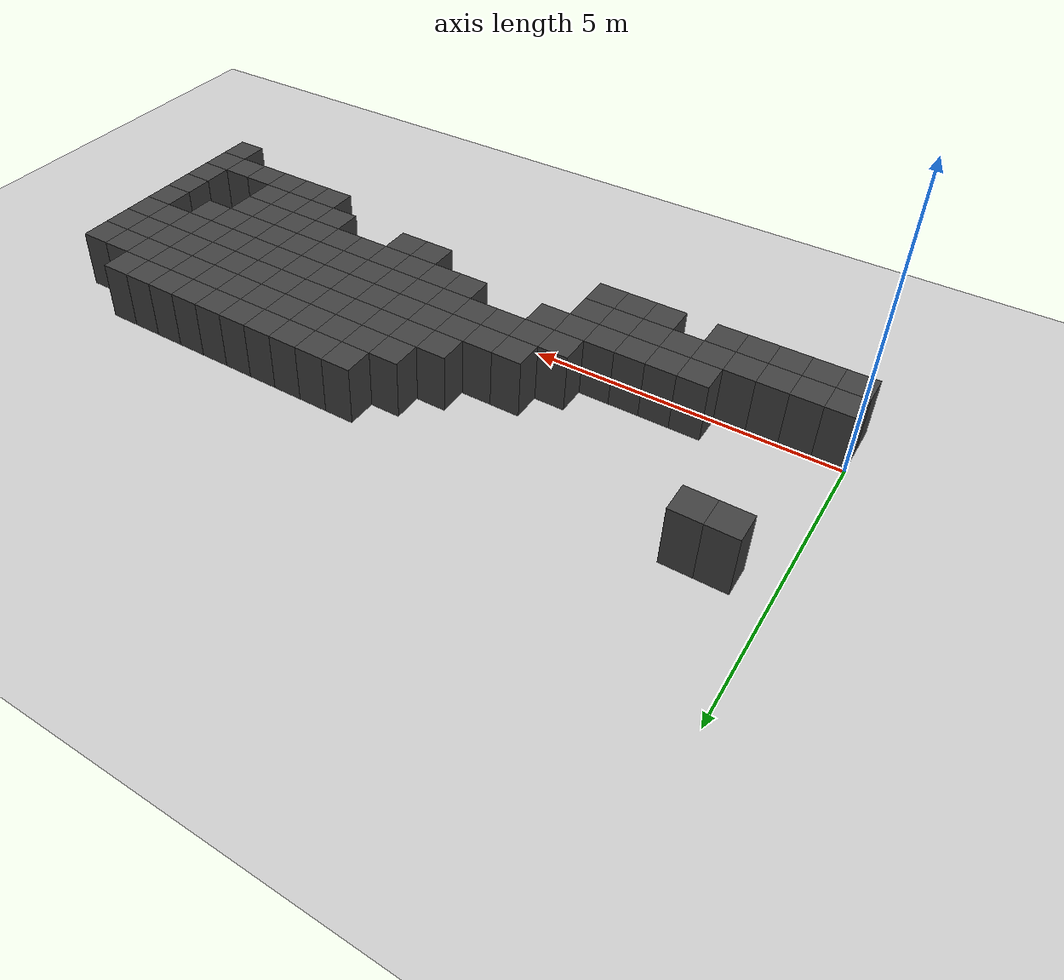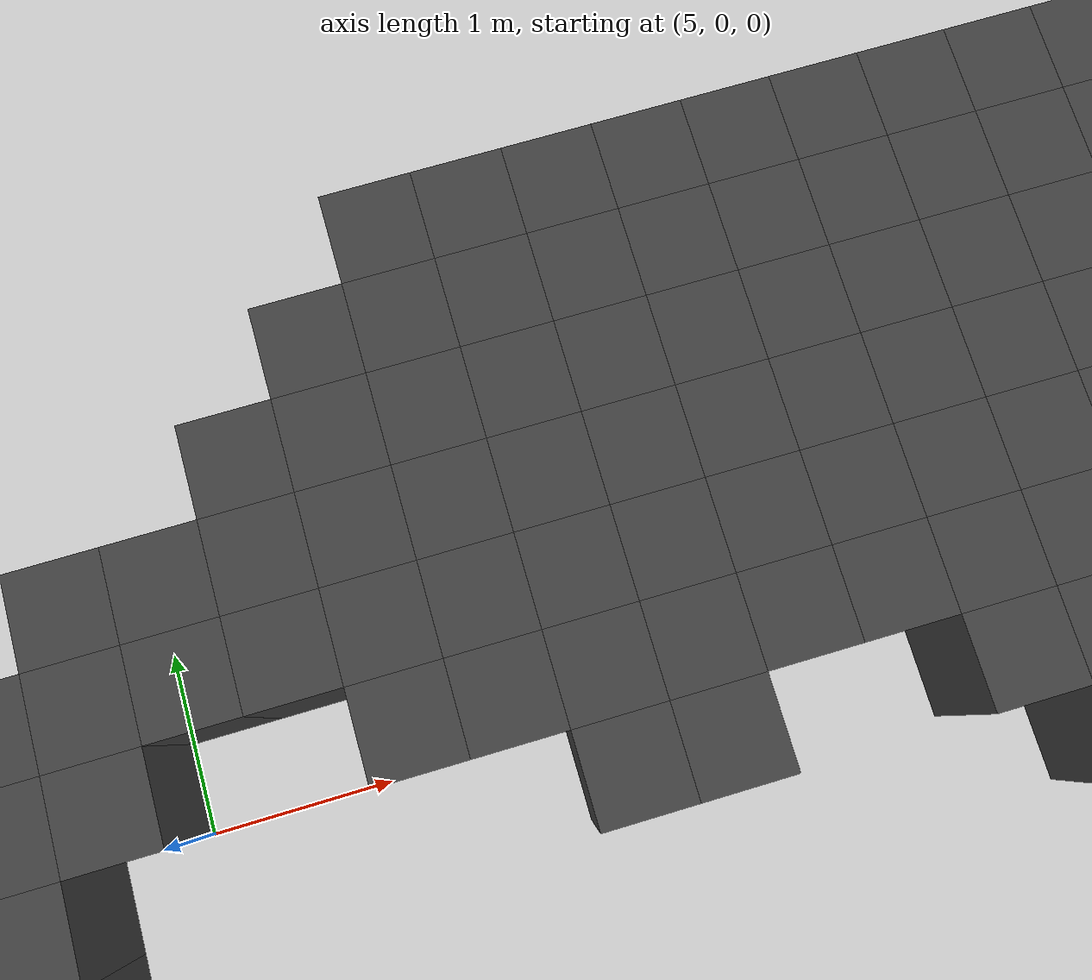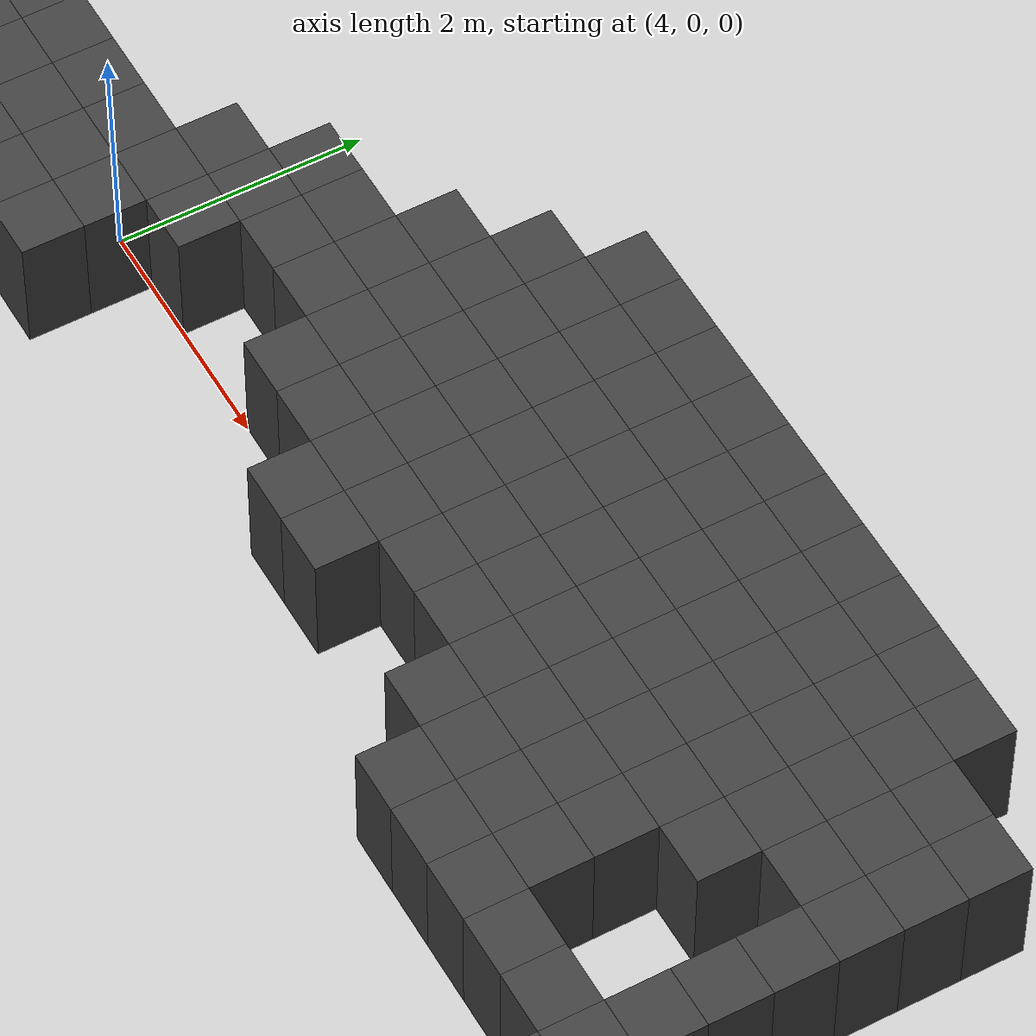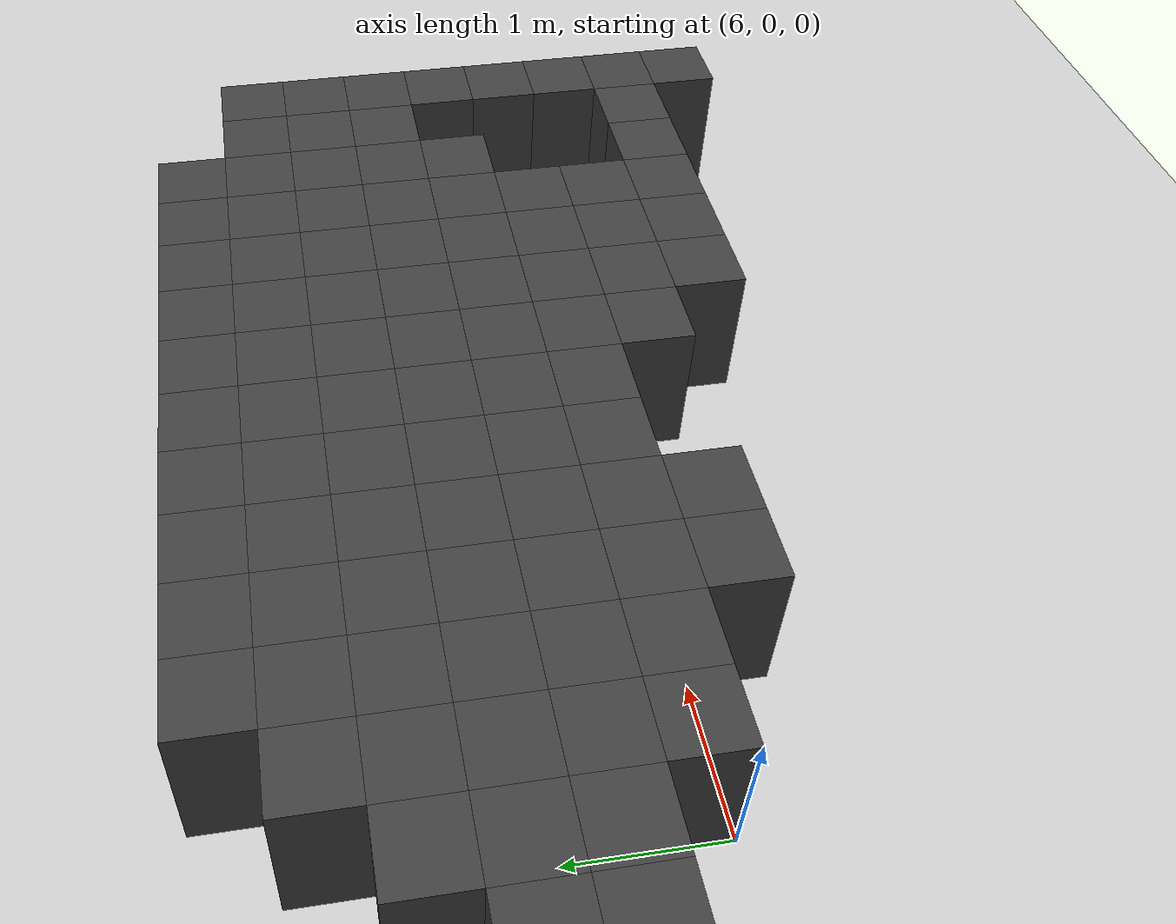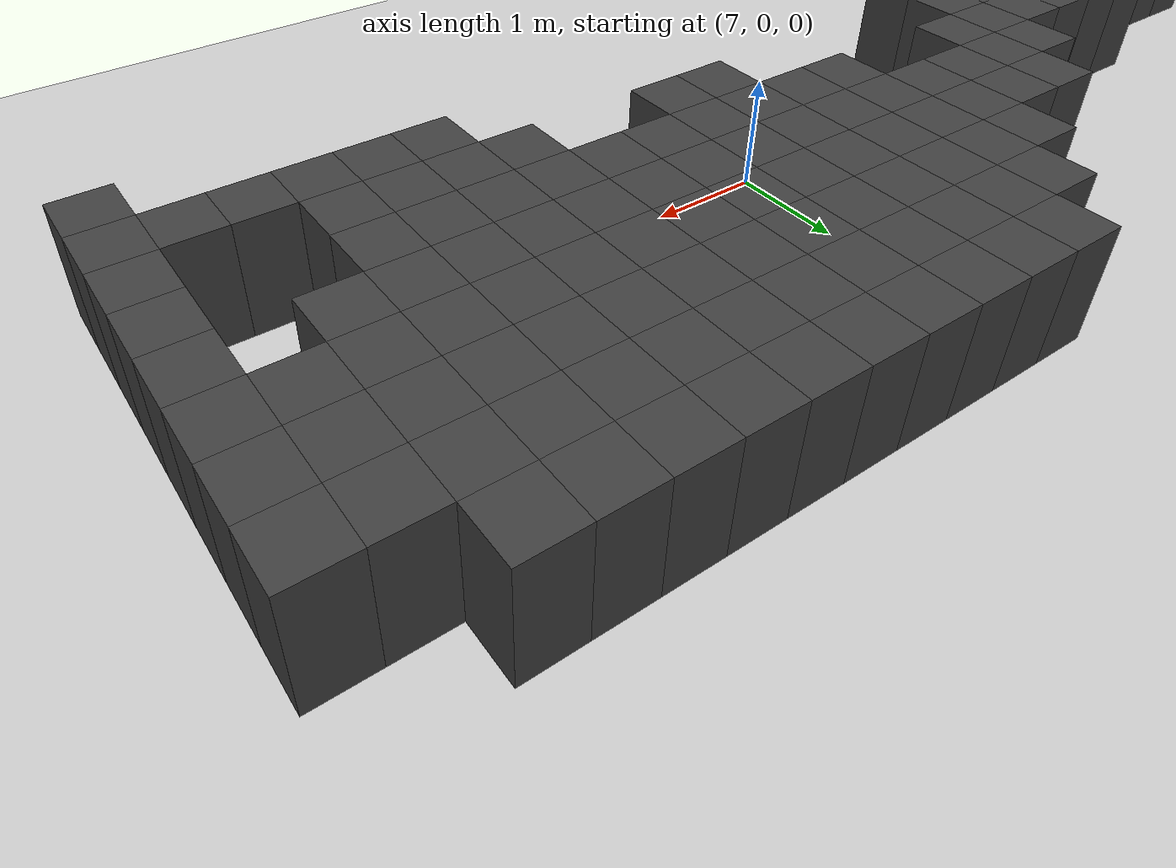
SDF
<sdf version="1.7">
 <world name="map_9826">
  <model name="ground_plane">
   <static>true</static>
   <link name="link">
    <collision name="collision">
     <geometry><plane><normal>0 0 1</normal><size>200 200</size></plane></geometry>
    </collision>
    <visual name="visual">
     <geometry><plane><normal>0 0 1</normal><size>200 200</size></plane></geometry>
     <material><ambient>0.8 0.8 0.8 1</ambient><diffuse>0.8 0.8 0.8 1</diffuse></material>
    </visual>
   </link>
  </model>
  <model name="maze_environment">
   <static>true</static>
   <link name="wall_404">
    <pose>0.750 2.750 0.500 0 0 0</pose>
    <collision name="col"><geometry><box><size>0.5 0.5 1.0</size></box></geometry></collision>
    <visual name="vis">
     <geometry><box><size>0.5 0.5 1.0</size></box></geometry>
     <material><ambient>0.15 0.15 0.15 1</ambient><diffuse>0.25 0.25 0.25 1</diffuse></material>
    </visual>
   </link>
   <link name="wall_405">
    <pose>1.250 2.750 0.500 0 0 0</pose>
    <collision name="col"><geometry><box><size>0.5 0.5 1.0</size></box></geometry></collision>
    <visual name="vis">
     <geometry><box><size>0.5 0.5 1.0</size></box></geometry>
     <material><ambient>0.15 0.15 0.15 1</ambient><diffuse>0.25 0.25 0.25 1</diffuse></material>
    </visual>
   </link>
   <link name="wall_406">
    <pose>6.750 2.750 0.500 0 0 0</pose>
    <collision name="col"><geometry><box><size>0.5 0.5 1.0</size></box></geometry></collision>
    <visual name="vis">
     <geometry><box><size>0.5 0.5 1.0</size></box></geometry>
     <material><ambient>0.15 0.15 0.15 1</ambient><diffuse>0.25 0.25 0.25 1</diffuse></material>
    </visual>
   </link>
   <link name="wall_407">
    <pose>7.250 2.750 0.500 0 0 0</pose>
    <collision name="col"><geometry><box><size>0.5 0.5 1.0</size></box></geometry></collision>
    <visual name="vis">
     <geometry><box><size>0.5 0.5 1.0</size></box></geometry>
     <material><ambient>0.15 0.15 0.15 1</ambient><diffuse>0.25 0.25 0.25 1</diffuse></material>
    </visual>
   </link>
   <link name="wall_408">
    <pose>7.750 2.750 0.500 0 0 0</pose>
    <collision name="col"><geometry><box><size>0.5 0.5 1.0</size></box></geometry></collision>
    <visual name="vis">
     <geometry><box><size>0.5 0.5 1.0</size></box></geometry>
     <material><ambient>0.15 0.15 0.15 1</ambient><diffuse>0.25 0.25 0.25 1</diffuse></material>
    </visual>
   </link>
   <link name="wall_409">
    <pose>8.250 2.750 0.500 0 0 0</pose>
    <collision name="col"><geometry><box><size>0.5 0.5 1.0</size></box></geometry></collision>
    <visual name="vis">
     <geometry><box><size>0.5 0.5 1.0</size></box></geometry>
     <material><ambient>0.15 0.15 0.15 1</ambient><diffuse>0.25 0.25 0.25 1</diffuse></material>
    </visual>
   </link>
   <link name="wall_410">
    <pose>8.750 2.750 0.500 0 0 0</pose>
    <collision name="col"><geometry><box><size>0.5 0.5 1.0</size></box></geometry></collision>
    <visual name="vis">
     <geometry><box><size>0.5 0.5 1.0</size></box></geometry>
     <material><ambient>0.15 0.15 0.15 1</ambient><diffuse>0.25 0.25 0.25 1</diffuse></material>
    </visual>
   </link>
   <link name="wall_411">
    <pose>9.250 2.750 0.500 0 0 0</pose>
    <collision name="col"><geometry><box><size>0.5 0.5 1.0</size></box></geometry></collision>
    <visual name="vis">
     <geometry><box><size>0.5 0.5 1.0</size></box></geometry>
     <material><ambient>0.15 0.15 0.15 1</ambient><diffuse>0.25 0.25 0.25 1</diffuse></material>
    </visual>
   </link>
   <link name="wall_412">
    <pose>9.750 2.750 0.500 0 0 0</pose>
    <collision name="col"><geometry><box><size>0.5 0.5 1.0</size></box></geometry></collision>
    <visual name="vis">
     <geometry><box><size>0.5 0.5 1.0</size></box></geometry>
     <material><ambient>0.15 0.15 0.15 1</ambient><diffuse>0.25 0.25 0.25 1</diffuse></material>
    </visual>
   </link>
   <link name="wall_413">
    <pose>10.250 2.750 0.500 0 0 0</pose>
    <collision name="col"><geometry><box><size>0.5 0.5 1.0</size></box></geometry></collision>
    <visual name="vis">
     <geometry><box><size>0.5 0.5 1.0</size></box></geometry>
     <material><ambient>0.15 0.15 0.15 1</ambient><diffuse>0.25 0.25 0.25 1</diffuse></material>
    </visual>
   </link>
   <link name="wall_414">
    <pose>10.750 2.750 0.500 0 0 0</pose>
    <collision name="col"><geometry><box><size>0.5 0.5 1.0</size></box></geometry></collision>
    <visual name="vis">
     <geometry><box><size>0.5 0.5 1.0</size></box></geometry>
     <material><ambient>0.15 0.15 0.15 1</ambient><diffuse>0.25 0.25 0.25 1</diffuse></material>
    </visual>
   </link>
   <link name="wall_415">
    <pose>11.250 2.750 0.500 0 0 0</pose>
    <collision name="col"><geometry><box><size>0.5 0.5 1.0</size></box></geometry></collision>
    <visual name="vis">
     <geometry><box><size>0.5 0.5 1.0</size></box></geometry>
     <material><ambient>0.15 0.15 0.15 1</ambient><diffuse>0.25 0.25 0.25 1</diffuse></material>
    </visual>
   </link>
   <link name="wall_419">
    <pose>6.250 2.250 0.500 0 0 0</pose>
    <collision name="col"><geometry><box><size>0.5 0.5 1.0</size></box></geometry></collision>
    <visual name="vis">
     <geometry><box><size>0.5 0.5 1.0</size></box></geometry>
     <material><ambient>0.15 0.15 0.15 1</ambient><diffuse>0.25 0.25 0.25 1</diffuse></material>
    </visual>
   </link>
   <link name="wall_420">
    <pose>6.750 2.250 0.500 0 0 0</pose>
    <collision name="col"><geometry><box><size>0.5 0.5 1.0</size></box></geometry></collision>
    <visual name="vis">
     <geometry><box><size>0.5 0.5 1.0</size></box></geometry>
     <material><ambient>0.15 0.15 0.15 1</ambient><diffuse>0.25 0.25 0.25 1</diffuse></material>
    </visual>
   </link>
   <link name="wall_421">
    <pose>7.250 2.250 0.500 0 0 0</pose>
    <collision name="col"><geometry><box><size>0.5 0.5 1.0</size></box></geometry></collision>
    <visual name="vis">
     <geometry><box><size>0.5 0.5 1.0</size></box></geometry>
     <material><ambient>0.15 0.15 0.15 1</ambient><diffuse>0.25 0.25 0.25 1</diffuse></material>
    </visual>
   </link>
   <link name="wall_422">
    <pose>7.750 2.250 0.500 0 0 0</pose>
    <collision name="col"><geometry><box><size>0.5 0.5 1.0</size></box></geometry></collision>
    <visual name="vis">
     <geometry><box><size>0.5 0.5 1.0</size></box></geometry>
     <material><ambient>0.15 0.15 0.15 1</ambient><diffuse>0.25 0.25 0.25 1</diffuse></material>
    </visual>
   </link>
   <link name="wall_423">
    <pose>8.250 2.250 0.500 0 0 0</pose>
    <collision name="col"><geometry><box><size>0.5 0.5 1.0</size></box></geometry></collision>
    <visual name="vis">
     <geometry><box><size>0.5 0.5 1.0</size></box></geometry>
     <material><ambient>0.15 0.15 0.15 1</ambient><diffuse>0.25 0.25 0.25 1</diffuse></material>
    </visual>
   </link>
   <link name="wall_424">
    <pose>8.750 2.250 0.500 0 0 0</pose>
    <collision name="col"><geometry><box><size>0.5 0.5 1.0</size></box></geometry></collision>
    <visual name="vis">
     <geometry><box><size>0.5 0.5 1.0</size></box></geometry>
     <material><ambient>0.15 0.15 0.15 1</ambient><diffuse>0.25 0.25 0.25 1</diffuse></material>
    </visual>
   </link>
   <link name="wall_425">
    <pose>9.250 2.250 0.500 0 0 0</pose>
    <collision name="col"><geometry><box><size>0.5 0.5 1.0</size></box></geometry></collision>
    <visual name="vis">
     <geometry><box><size>0.5 0.5 1.0</size></box></geometry>
     <material><ambient>0.15 0.15 0.15 1</ambient><diffuse>0.25 0.25 0.25 1</diffuse></material>
    </visual>
   </link>
   <link name="wall_426">
    <pose>9.750 2.250 0.500 0 0 0</pose>
    <collision name="col"><geometry><box><size>0.5 0.5 1.0</size></box></geometry></collision>
    <visual name="vis">
     <geometry><box><size>0.5 0.5 1.0</size></box></geometry>
     <material><ambient>0.15 0.15 0.15 1</ambient><diffuse>0.25 0.25 0.25 1</diffuse></material>
    </visual>
   </link>
   <link name="wall_427">
    <pose>10.250 2.250 0.500 0 0 0</pose>
    <collision name="col"><geometry><box><size>0.5 0.5 1.0</size></box></geometry></collision>
    <visual name="vis">
     <geometry><box><size>0.5 0.5 1.0</size></box></geometry>
     <material><ambient>0.15 0.15 0.15 1</ambient><diffuse>0.25 0.25 0.25 1</diffuse></material>
    </visual>
   </link>
   <link name="wall_428">
    <pose>10.750 2.250 0.500 0 0 0</pose>
    <collision name="col"><geometry><box><size>0.5 0.5 1.0</size></box></geometry></collision>
    <visual name="vis">
     <geometry><box><size>0.5 0.5 1.0</size></box></geometry>
     <material><ambient>0.15 0.15 0.15 1</ambient><diffuse>0.25 0.25 0.25 1</diffuse></material>
    </visual>
   </link>
   <link name="wall_429">
    <pose>11.250 2.250 0.500 0 0 0</pose>
    <collision name="col"><geometry><box><size>0.5 0.5 1.0</size></box></geometry></collision>
    <visual name="vis">
     <geometry><box><size>0.5 0.5 1.0</size></box></geometry>
     <material><ambient>0.15 0.15 0.15 1</ambient><diffuse>0.25 0.25 0.25 1</diffuse></material>
    </visual>
   </link>
   <link name="wall_430">
    <pose>11.750 2.250 0.500 0 0 0</pose>
    <collision name="col"><geometry><box><size>0.5 0.5 1.0</size></box></geometry></collision>
    <visual name="vis">
     <geometry><box><size>0.5 0.5 1.0</size></box></geometry>
     <material><ambient>0.15 0.15 0.15 1</ambient><diffuse>0.25 0.25 0.25 1</diffuse></material>
    </visual>
   </link>
   <link name="wall_431">
    <pose>12.250 2.250 0.500 0 0 0</pose>
    <collision name="col"><geometry><box><size>0.5 0.5 1.0</size></box></geometry></collision>
    <visual name="vis">
     <geometry><box><size>0.5 0.5 1.0</size></box></geometry>
     <material><ambient>0.15 0.15 0.15 1</ambient><diffuse>0.25 0.25 0.25 1</diffuse></material>
    </visual>
   </link>
   <link name="wall_435">
    <pose>5.750 1.750 0.500 0 0 0</pose>
    <collision name="col"><geometry><box><size>0.5 0.5 1.0</size></box></geometry></collision>
    <visual name="vis">
     <geometry><box><size>0.5 0.5 1.0</size></box></geometry>
     <material><ambient>0.15 0.15 0.15 1</ambient><diffuse>0.25 0.25 0.25 1</diffuse></material>
    </visual>
   </link>
   <link name="wall_436">
    <pose>6.250 1.750 0.500 0 0 0</pose>
    <collision name="col"><geometry><box><size>0.5 0.5 1.0</size></box></geometry></collision>
    <visual name="vis">
     <geometry><box><size>0.5 0.5 1.0</size></box></geometry>
     <material><ambient>0.15 0.15 0.15 1</ambient><diffuse>0.25 0.25 0.25 1</diffuse></material>
    </visual>
   </link>
   <link name="wall_437">
    <pose>6.750 1.750 0.500 0 0 0</pose>
    <collision name="col"><geometry><box><size>0.5 0.5 1.0</size></box></geometry></collision>
    <visual name="vis">
     <geometry><box><size>0.5 0.5 1.0</size></box></geometry>
     <material><ambient>0.15 0.15 0.15 1</ambient><diffuse>0.25 0.25 0.25 1</diffuse></material>
    </visual>
   </link>
   <link name="wall_438">
    <pose>7.250 1.750 0.500 0 0 0</pose>
    <collision name="col"><geometry><box><size>0.5 0.5 1.0</size></box></geometry></collision>
    <visual name="vis">
     <geometry><box><size>0.5 0.5 1.0</size></box></geometry>
     <material><ambient>0.15 0.15 0.15 1</ambient><diffuse>0.25 0.25 0.25 1</diffuse></material>
    </visual>
   </link>
   <link name="wall_439">
    <pose>7.750 1.750 0.500 0 0 0</pose>
    <collision name="col"><geometry><box><size>0.5 0.5 1.0</size></box></geometry></collision>
    <visual name="vis">
     <geometry><box><size>0.5 0.5 1.0</size></box></geometry>
     <material><ambient>0.15 0.15 0.15 1</ambient><diffuse>0.25 0.25 0.25 1</diffuse></material>
    </visual>
   </link>
   <link name="wall_440">
    <pose>8.250 1.750 0.500 0 0 0</pose>
    <collision name="col"><geometry><box><size>0.5 0.5 1.0</size></box></geometry></collision>
    <visual name="vis">
     <geometry><box><size>0.5 0.5 1.0</size></box></geometry>
     <material><ambient>0.15 0.15 0.15 1</ambient><diffuse>0.25 0.25 0.25 1</diffuse></material>
    </visual>
   </link>
   <link name="wall_441">
    <pose>8.750 1.750 0.500 0 0 0</pose>
    <collision name="col"><geometry><box><size>0.5 0.5 1.0</size></box></geometry></collision>
    <visual name="vis">
     <geometry><box><size>0.5 0.5 1.0</size></box></geometry>
     <material><ambient>0.15 0.15 0.15 1</ambient><diffuse>0.25 0.25 0.25 1</diffuse></material>
    </visual>
   </link>
   <link name="wall_442">
    <pose>9.250 1.750 0.500 0 0 0</pose>
    <collision name="col"><geometry><box><size>0.5 0.5 1.0</size></box></geometry></collision>
    <visual name="vis">
     <geometry><box><size>0.5 0.5 1.0</size></box></geometry>
     <material><ambient>0.15 0.15 0.15 1</ambient><diffuse>0.25 0.25 0.25 1</diffuse></material>
    </visual>
   </link>
   <link name="wall_443">
    <pose>9.750 1.750 0.500 0 0 0</pose>
    <collision name="col"><geometry><box><size>0.5 0.5 1.0</size></box></geometry></collision>
    <visual name="vis">
     <geometry><box><size>0.5 0.5 1.0</size></box></geometry>
     <material><ambient>0.15 0.15 0.15 1</ambient><diffuse>0.25 0.25 0.25 1</diffuse></material>
    </visual>
   </link>
   <link name="wall_444">
    <pose>10.250 1.750 0.500 0 0 0</pose>
    <collision name="col"><geometry><box><size>0.5 0.5 1.0</size></box></geometry></collision>
    <visual name="vis">
     <geometry><box><size>0.5 0.5 1.0</size></box></geometry>
     <material><ambient>0.15 0.15 0.15 1</ambient><diffuse>0.25 0.25 0.25 1</diffuse></material>
    </visual>
   </link>
   <link name="wall_445">
    <pose>10.750 1.750 0.500 0 0 0</pose>
    <collision name="col"><geometry><box><size>0.5 0.5 1.0</size></box></geometry></collision>
    <visual name="vis">
     <geometry><box><size>0.5 0.5 1.0</size></box></geometry>
     <material><ambient>0.15 0.15 0.15 1</ambient><diffuse>0.25 0.25 0.25 1</diffuse></material>
    </visual>
   </link>
   <link name="wall_446">
    <pose>11.250 1.750 0.500 0 0 0</pose>
    <collision name="col"><geometry><box><size>0.5 0.5 1.0</size></box></geometry></collision>
    <visual name="vis">
     <geometry><box><size>0.5 0.5 1.0</size></box></geometry>
     <material><ambient>0.15 0.15 0.15 1</ambient><diffuse>0.25 0.25 0.25 1</diffuse></material>
    </visual>
   </link>
   <link name="wall_447">
    <pose>11.750 1.750 0.500 0 0 0</pose>
    <collision name="col"><geometry><box><size>0.5 0.5 1.0</size></box></geometry></collision>
    <visual name="vis">
     <geometry><box><size>0.5 0.5 1.0</size></box></geometry>
     <material><ambient>0.15 0.15 0.15 1</ambient><diffuse>0.25 0.25 0.25 1</diffuse></material>
    </visual>
   </link>
   <link name="wall_448">
    <pose>12.250 1.750 0.500 0 0 0</pose>
    <collision name="col"><geometry><box><size>0.5 0.5 1.0</size></box></geometry></collision>
    <visual name="vis">
     <geometry><box><size>0.5 0.5 1.0</size></box></geometry>
     <material><ambient>0.15 0.15 0.15 1</ambient><diffuse>0.25 0.25 0.25 1</diffuse></material>
    </visual>
   </link>
   <link name="wall_450">
    <pose>4.750 1.250 0.500 0 0 0</pose>
    <collision name="col"><geometry><box><size>0.5 0.5 1.0</size></box></geometry></collision>
    <visual name="vis">
     <geometry><box><size>0.5 0.5 1.0</size></box></geometry>
     <material><ambient>0.15 0.15 0.15 1</ambient><diffuse>0.25 0.25 0.25 1</diffuse></material>
    </visual>
   </link>
   <link name="wall_451">
    <pose>5.250 1.250 0.500 0 0 0</pose>
    <collision name="col"><geometry><box><size>0.5 0.5 1.0</size></box></geometry></collision>
    <visual name="vis">
     <geometry><box><size>0.5 0.5 1.0</size></box></geometry>
     <material><ambient>0.15 0.15 0.15 1</ambient><diffuse>0.25 0.25 0.25 1</diffuse></material>
    </visual>
   </link>
   <link name="wall_452">
    <pose>5.750 1.250 0.500 0 0 0</pose>
    <collision name="col"><geometry><box><size>0.5 0.5 1.0</size></box></geometry></collision>
    <visual name="vis">
     <geometry><box><size>0.5 0.5 1.0</size></box></geometry>
     <material><ambient>0.15 0.15 0.15 1</ambient><diffuse>0.25 0.25 0.25 1</diffuse></material>
    </visual>
   </link>
   <link name="wall_453">
    <pose>6.250 1.250 0.500 0 0 0</pose>
    <collision name="col"><geometry><box><size>0.5 0.5 1.0</size></box></geometry></collision>
    <visual name="vis">
     <geometry><box><size>0.5 0.5 1.0</size></box></geometry>
     <material><ambient>0.15 0.15 0.15 1</ambient><diffuse>0.25 0.25 0.25 1</diffuse></material>
    </visual>
   </link>
   <link name="wall_454">
    <pose>6.750 1.250 0.500 0 0 0</pose>
    <collision name="col"><geometry><box><size>0.5 0.5 1.0</size></box></geometry></collision>
    <visual name="vis">
     <geometry><box><size>0.5 0.5 1.0</size></box></geometry>
     <material><ambient>0.15 0.15 0.15 1</ambient><diffuse>0.25 0.25 0.25 1</diffuse></material>
    </visual>
   </link>
   <link name="wall_455">
    <pose>7.250 1.250 0.500 0 0 0</pose>
    <collision name="col"><geometry><box><size>0.5 0.5 1.0</size></box></geometry></collision>
    <visual name="vis">
     <geometry><box><size>0.5 0.5 1.0</size></box></geometry>
     <material><ambient>0.15 0.15 0.15 1</ambient><diffuse>0.25 0.25 0.25 1</diffuse></material>
    </visual>
   </link>
   <link name="wall_456">
    <pose>7.750 1.250 0.500 0 0 0</pose>
    <collision name="col"><geometry><box><size>0.5 0.5 1.0</size></box></geometry></collision>
    <visual name="vis">
     <geometry><box><size>0.5 0.5 1.0</size></box></geometry>
     <material><ambient>0.15 0.15 0.15 1</ambient><diffuse>0.25 0.25 0.25 1</diffuse></material>
    </visual>
   </link>
   <link name="wall_457">
    <pose>8.250 1.250 0.500 0 0 0</pose>
    <collision name="col"><geometry><box><size>0.5 0.5 1.0</size></box></geometry></collision>
    <visual name="vis">
     <geometry><box><size>0.5 0.5 1.0</size></box></geometry>
     <material><ambient>0.15 0.15 0.15 1</ambient><diffuse>0.25 0.25 0.25 1</diffuse></material>
    </visual>
   </link>
   <link name="wall_458">
    <pose>8.750 1.250 0.500 0 0 0</pose>
    <collision name="col"><geometry><box><size>0.5 0.5 1.0</size></box></geometry></collision>
    <visual name="vis">
     <geometry><box><size>0.5 0.5 1.0</size></box></geometry>
     <material><ambient>0.15 0.15 0.15 1</ambient><diffuse>0.25 0.25 0.25 1</diffuse></material>
    </visual>
   </link>
   <link name="wall_459">
    <pose>9.250 1.250 0.500 0 0 0</pose>
    <collision name="col"><geometry><box><size>0.5 0.5 1.0</size></box></geometry></collision>
    <visual name="vis">
     <geometry><box><size>0.5 0.5 1.0</size></box></geometry>
     <material><ambient>0.15 0.15 0.15 1</ambient><diffuse>0.25 0.25 0.25 1</diffuse></material>
    </visual>
   </link>
   <link name="wall_460">
    <pose>9.750 1.250 0.500 0 0 0</pose>
    <collision name="col"><geometry><box><size>0.5 0.5 1.0</size></box></geometry></collision>
    <visual name="vis">
     <geometry><box><size>0.5 0.5 1.0</size></box></geometry>
     <material><ambient>0.15 0.15 0.15 1</ambient><diffuse>0.25 0.25 0.25 1</diffuse></material>
    </visual>
   </link>
   <link name="wall_461">
    <pose>10.250 1.250 0.500 0 0 0</pose>
    <collision name="col"><geometry><box><size>0.5 0.5 1.0</size></box></geometry></collision>
    <visual name="vis">
     <geometry><box><size>0.5 0.5 1.0</size></box></geometry>
     <material><ambient>0.15 0.15 0.15 1</ambient><diffuse>0.25 0.25 0.25 1</diffuse></material>
    </visual>
   </link>
   <link name="wall_462">
    <pose>10.750 1.250 0.500 0 0 0</pose>
    <collision name="col"><geometry><box><size>0.5 0.5 1.0</size></box></geometry></collision>
    <visual name="vis">
     <geometry><box><size>0.5 0.5 1.0</size></box></geometry>
     <material><ambient>0.15 0.15 0.15 1</ambient><diffuse>0.25 0.25 0.25 1</diffuse></material>
    </visual>
   </link>
   <link name="wall_463">
    <pose>11.250 1.250 0.500 0 0 0</pose>
    <collision name="col"><geometry><box><size>0.5 0.5 1.0</size></box></geometry></collision>
    <visual name="vis">
     <geometry><box><size>0.5 0.5 1.0</size></box></geometry>
     <material><ambient>0.15 0.15 0.15 1</ambient><diffuse>0.25 0.25 0.25 1</diffuse></material>
    </visual>
   </link>
   <link name="wall_464">
    <pose>11.750 1.250 0.500 0 0 0</pose>
    <collision name="col"><geometry><box><size>0.5 0.5 1.0</size></box></geometry></collision>
    <visual name="vis">
     <geometry><box><size>0.5 0.5 1.0</size></box></geometry>
     <material><ambient>0.15 0.15 0.15 1</ambient><diffuse>0.25 0.25 0.25 1</diffuse></material>
    </visual>
   </link>
   <link name="wall_465">
    <pose>12.250 1.250 0.500 0 0 0</pose>
    <collision name="col"><geometry><box><size>0.5 0.5 1.0</size></box></geometry></collision>
    <visual name="vis">
     <geometry><box><size>0.5 0.5 1.0</size></box></geometry>
     <material><ambient>0.15 0.15 0.15 1</ambient><diffuse>0.25 0.25 0.25 1</diffuse></material>
    </visual>
   </link>
   <link name="wall_471">
    <pose>4.250 0.750 0.500 0 0 0</pose>
    <collision name="col"><geometry><box><size>0.5 0.5 1.0</size></box></geometry></collision>
    <visual name="vis">
     <geometry><box><size>0.5 0.5 1.0</size></box></geometry>
     <material><ambient>0.15 0.15 0.15 1</ambient><diffuse>0.25 0.25 0.25 1</diffuse></material>
    </visual>
   </link>
   <link name="wall_472">
    <pose>4.750 0.750 0.500 0 0 0</pose>
    <collision name="col"><geometry><box><size>0.5 0.5 1.0</size></box></geometry></collision>
    <visual name="vis">
     <geometry><box><size>0.5 0.5 1.0</size></box></geometry>
     <material><ambient>0.15 0.15 0.15 1</ambient><diffuse>0.25 0.25 0.25 1</diffuse></material>
    </visual>
   </link>
   <link name="wall_473">
    <pose>5.250 0.750 0.500 0 0 0</pose>
    <collision name="col"><geometry><box><size>0.5 0.5 1.0</size></box></geometry></collision>
    <visual name="vis">
     <geometry><box><size>0.5 0.5 1.0</size></box></geometry>
     <material><ambient>0.15 0.15 0.15 1</ambient><diffuse>0.25 0.25 0.25 1</diffuse></material>
    </visual>
   </link>
   <link name="wall_474">
    <pose>5.750 0.750 0.500 0 0 0</pose>
    <collision name="col"><geometry><box><size>0.5 0.5 1.0</size></box></geometry></collision>
    <visual name="vis">
     <geometry><box><size>0.5 0.5 1.0</size></box></geometry>
     <material><ambient>0.15 0.15 0.15 1</ambient><diffuse>0.25 0.25 0.25 1</diffuse></material>
    </visual>
   </link>
   <link name="wall_475">
    <pose>6.250 0.750 0.500 0 0 0</pose>
    <collision name="col"><geometry><box><size>0.5 0.5 1.0</size></box></geometry></collision>
    <visual name="vis">
     <geometry><box><size>0.5 0.5 1.0</size></box></geometry>
     <material><ambient>0.15 0.15 0.15 1</ambient><diffuse>0.25 0.25 0.25 1</diffuse></material>
    </visual>
   </link>
   <link name="wall_476">
    <pose>6.750 0.750 0.500 0 0 0</pose>
    <collision name="col"><geometry><box><size>0.5 0.5 1.0</size></box></geometry></collision>
    <visual name="vis">
     <geometry><box><size>0.5 0.5 1.0</size></box></geometry>
     <material><ambient>0.15 0.15 0.15 1</ambient><diffuse>0.25 0.25 0.25 1</diffuse></material>
    </visual>
   </link>
   <link name="wall_477">
    <pose>7.250 0.750 0.500 0 0 0</pose>
    <collision name="col"><geometry><box><size>0.5 0.5 1.0</size></box></geometry></collision>
    <visual name="vis">
     <geometry><box><size>0.5 0.5 1.0</size></box></geometry>
     <material><ambient>0.15 0.15 0.15 1</ambient><diffuse>0.25 0.25 0.25 1</diffuse></material>
    </visual>
   </link>
   <link name="wall_478">
    <pose>7.750 0.750 0.500 0 0 0</pose>
    <collision name="col"><geometry><box><size>0.5 0.5 1.0</size></box></geometry></collision>
    <visual name="vis">
     <geometry><box><size>0.5 0.5 1.0</size></box></geometry>
     <material><ambient>0.15 0.15 0.15 1</ambient><diffuse>0.25 0.25 0.25 1</diffuse></material>
    </visual>
   </link>
   <link name="wall_479">
    <pose>8.250 0.750 0.500 0 0 0</pose>
    <collision name="col"><geometry><box><size>0.5 0.5 1.0</size></box></geometry></collision>
    <visual name="vis">
     <geometry><box><size>0.5 0.5 1.0</size></box></geometry>
     <material><ambient>0.15 0.15 0.15 1</ambient><diffuse>0.25 0.25 0.25 1</diffuse></material>
    </visual>
   </link>
   <link name="wall_480">
    <pose>8.750 0.750 0.500 0 0 0</pose>
    <collision name="col"><geometry><box><size>0.5 0.5 1.0</size></box></geometry></collision>
    <visual name="vis">
     <geometry><box><size>0.5 0.5 1.0</size></box></geometry>
     <material><ambient>0.15 0.15 0.15 1</ambient><diffuse>0.25 0.25 0.25 1</diffuse></material>
    </visual>
   </link>
   <link name="wall_481">
    <pose>9.250 0.750 0.500 0 0 0</pose>
    <collision name="col"><geometry><box><size>0.5 0.5 1.0</size></box></geometry></collision>
    <visual name="vis">
     <geometry><box><size>0.5 0.5 1.0</size></box></geometry>
     <material><ambient>0.15 0.15 0.15 1</ambient><diffuse>0.25 0.25 0.25 1</diffuse></material>
    </visual>
   </link>
   <link name="wall_482">
    <pose>9.750 0.750 0.500 0 0 0</pose>
    <collision name="col"><geometry><box><size>0.5 0.5 1.0</size></box></geometry></collision>
    <visual name="vis">
     <geometry><box><size>0.5 0.5 1.0</size></box></geometry>
     <material><ambient>0.15 0.15 0.15 1</ambient><diffuse>0.25 0.25 0.25 1</diffuse></material>
    </visual>
   </link>
   <link name="wall_483">
    <pose>10.250 0.750 0.500 0 0 0</pose>
    <collision name="col"><geometry><box><size>0.5 0.5 1.0</size></box></geometry></collision>
    <visual name="vis">
     <geometry><box><size>0.5 0.5 1.0</size></box></geometry>
     <material><ambient>0.15 0.15 0.15 1</ambient><diffuse>0.25 0.25 0.25 1</diffuse></material>
    </visual>
   </link>
   <link name="wall_484">
    <pose>10.750 0.750 0.500 0 0 0</pose>
    <collision name="col"><geometry><box><size>0.5 0.5 1.0</size></box></geometry></collision>
    <visual name="vis">
     <geometry><box><size>0.5 0.5 1.0</size></box></geometry>
     <material><ambient>0.15 0.15 0.15 1</ambient><diffuse>0.25 0.25 0.25 1</diffuse></material>
    </visual>
   </link>
   <link name="wall_485">
    <pose>11.250 0.750 0.500 0 0 0</pose>
    <collision name="col"><geometry><box><size>0.5 0.5 1.0</size></box></geometry></collision>
    <visual name="vis">
     <geometry><box><size>0.5 0.5 1.0</size></box></geometry>
     <material><ambient>0.15 0.15 0.15 1</ambient><diffuse>0.25 0.25 0.25 1</diffuse></material>
    </visual>
   </link>
   <link name="wall_486">
    <pose>12.250 0.750 0.500 0 0 0</pose>
    <collision name="col"><geometry><box><size>0.5 0.5 1.0</size></box></geometry></collision>
    <visual name="vis">
     <geometry><box><size>0.5 0.5 1.0</size></box></geometry>
     <material><ambient>0.15 0.15 0.15 1</ambient><diffuse>0.25 0.25 0.25 1</diffuse></material>
    </visual>
   </link>
   <link name="wall_501">
    <pose>2.250 0.250 0.500 0 0 0</pose>
    <collision name="col"><geometry><box><size>0.5 0.5 1.0</size></box></geometry></collision>
    <visual name="vis">
     <geometry><box><size>0.5 0.5 1.0</size></box></geometry>
     <material><ambient>0.15 0.15 0.15 1</ambient><diffuse>0.25 0.25 0.25 1</diffuse></material>
    </visual>
   </link>
   <link name="wall_502">
    <pose>2.750 0.250 0.500 0 0 0</pose>
    <collision name="col"><geometry><box><size>0.5 0.5 1.0</size></box></geometry></collision>
    <visual name="vis">
     <geometry><box><size>0.5 0.5 1.0</size></box></geometry>
     <material><ambient>0.15 0.15 0.15 1</ambient><diffuse>0.25 0.25 0.25 1</diffuse></material>
    </visual>
   </link>
   <link name="wall_503">
    <pose>3.250 0.250 0.500 0 0 0</pose>
    <collision name="col"><geometry><box><size>0.5 0.5 1.0</size></box></geometry></collision>
    <visual name="vis">
     <geometry><box><size>0.5 0.5 1.0</size></box></geometry>
     <material><ambient>0.15 0.15 0.15 1</ambient><diffuse>0.25 0.25 0.25 1</diffuse></material>
    </visual>
   </link>
   <link name="wall_504">
    <pose>3.750 0.250 0.500 0 0 0</pose>
    <collision name="col"><geometry><box><size>0.5 0.5 1.0</size></box></geometry></collision>
    <visual name="vis">
     <geometry><box><size>0.5 0.5 1.0</size></box></geometry>
     <material><ambient>0.15 0.15 0.15 1</ambient><diffuse>0.25 0.25 0.25 1</diffuse></material>
    </visual>
   </link>
   <link name="wall_505">
    <pose>4.250 0.250 0.500 0 0 0</pose>
    <collision name="col"><geometry><box><size>0.5 0.5 1.0</size></box></geometry></collision>
    <visual name="vis">
     <geometry><box><size>0.5 0.5 1.0</size></box></geometry>
     <material><ambient>0.15 0.15 0.15 1</ambient><diffuse>0.25 0.25 0.25 1</diffuse></material>
    </visual>
   </link>
   <link name="wall_506">
    <pose>4.750 0.250 0.500 0 0 0</pose>
    <collision name="col"><geometry><box><size>0.5 0.5 1.0</size></box></geometry></collision>
    <visual name="vis">
     <geometry><box><size>0.5 0.5 1.0</size></box></geometry>
     <material><ambient>0.15 0.15 0.15 1</ambient><diffuse>0.25 0.25 0.25 1</diffuse></material>
    </visual>
   </link>
   <link name="wall_507">
    <pose>6.250 0.250 0.500 0 0 0</pose>
    <collision name="col"><geometry><box><size>0.5 0.5 1.0</size></box></geometry></collision>
    <visual name="vis">
     <geometry><box><size>0.5 0.5 1.0</size></box></geometry>
     <material><ambient>0.15 0.15 0.15 1</ambient><diffuse>0.25 0.25 0.25 1</diffuse></material>
    </visual>
   </link>
   <link name="wall_508">
    <pose>6.750 0.250 0.500 0 0 0</pose>
    <collision name="col"><geometry><box><size>0.5 0.5 1.0</size></box></geometry></collision>
    <visual name="vis">
     <geometry><box><size>0.5 0.5 1.0</size></box></geometry>
     <material><ambient>0.15 0.15 0.15 1</ambient><diffuse>0.25 0.25 0.25 1</diffuse></material>
    </visual>
   </link>
   <link name="wall_509">
    <pose>7.250 0.250 0.500 0 0 0</pose>
    <collision name="col"><geometry><box><size>0.5 0.5 1.0</size></box></geometry></collision>
    <visual name="vis">
     <geometry><box><size>0.5 0.5 1.0</size></box></geometry>
     <material><ambient>0.15 0.15 0.15 1</ambient><diffuse>0.25 0.25 0.25 1</diffuse></material>
    </visual>
   </link>
   <link name="wall_510">
    <pose>7.750 0.250 0.500 0 0 0</pose>
    <collision name="col"><geometry><box><size>0.5 0.5 1.0</size></box></geometry></collision>
    <visual name="vis">
     <geometry><box><size>0.5 0.5 1.0</size></box></geometry>
     <material><ambient>0.15 0.15 0.15 1</ambient><diffuse>0.25 0.25 0.25 1</diffuse></material>
    </visual>
   </link>
   <link name="wall_511">
    <pose>8.250 0.250 0.500 0 0 0</pose>
    <collision name="col"><geometry><box><size>0.5 0.5 1.0</size></box></geometry></collision>
    <visual name="vis">
     <geometry><box><size>0.5 0.5 1.0</size></box></geometry>
     <material><ambient>0.15 0.15 0.15 1</ambient><diffuse>0.25 0.25 0.25 1</diffuse></material>
    </visual>
   </link>
   <link name="wall_512">
    <pose>8.750 0.250 0.500 0 0 0</pose>
    <collision name="col"><geometry><box><size>0.5 0.5 1.0</size></box></geometry></collision>
    <visual name="vis">
     <geometry><box><size>0.5 0.5 1.0</size></box></geometry>
     <material><ambient>0.15 0.15 0.15 1</ambient><diffuse>0.25 0.25 0.25 1</diffuse></material>
    </visual>
   </link>
   <link name="wall_513">
    <pose>9.250 0.250 0.500 0 0 0</pose>
    <collision name="col"><geometry><box><size>0.5 0.5 1.0</size></box></geometry></collision>
    <visual name="vis">
     <geometry><box><size>0.5 0.5 1.0</size></box></geometry>
     <material><ambient>0.15 0.15 0.15 1</ambient><diffuse>0.25 0.25 0.25 1</diffuse></material>
    </visual>
   </link>
   <link name="wall_514">
    <pose>9.750 0.250 0.500 0 0 0</pose>
    <collision name="col"><geometry><box><size>0.5 0.5 1.0</size></box></geometry></collision>
    <visual name="vis">
     <geometry><box><size>0.5 0.5 1.0</size></box></geometry>
     <material><ambient>0.15 0.15 0.15 1</ambient><diffuse>0.25 0.25 0.25 1</diffuse></material>
    </visual>
   </link>
   <link name="wall_515">
    <pose>10.250 0.250 0.500 0 0 0</pose>
    <collision name="col"><geometry><box><size>0.5 0.5 1.0</size></box></geometry></collision>
    <visual name="vis">
     <geometry><box><size>0.5 0.5 1.0</size></box></geometry>
     <material><ambient>0.15 0.15 0.15 1</ambient><diffuse>0.25 0.25 0.25 1</diffuse></material>
    </visual>
   </link>
   <link name="wall_516">
    <pose>10.750 0.250 0.500 0 0 0</pose>
    <collision name="col"><geometry><box><size>0.5 0.5 1.0</size></box></geometry></collision>
    <visual name="vis">
     <geometry><box><size>0.5 0.5 1.0</size></box></geometry>
     <material><ambient>0.15 0.15 0.15 1</ambient><diffuse>0.25 0.25 0.25 1</diffuse></material>
    </visual>
   </link>
   <link name="wall_517">
    <pose>12.250 0.250 0.500 0 0 0</pose>
    <collision name="col"><geometry><box><size>0.5 0.5 1.0</size></box></geometry></collision>
    <visual name="vis">
     <geometry><box><size>0.5 0.5 1.0</size></box></geometry>
     <material><ambient>0.15 0.15 0.15 1</ambient><diffuse>0.25 0.25 0.25 1</diffuse></material>
    </visual>
   </link>
   <link name="wall_535">
    <pose>0.250 -0.250 0.500 0 0 0</pose>
    <collision name="col"><geometry><box><size>0.5 0.5 1.0</size></box></geometry></collision>
    <visual name="vis">
     <geometry><box><size>0.5 0.5 1.0</size></box></geometry>
     <material><ambient>0.15 0.15 0.15 1</ambient><diffuse>0.25 0.25 0.25 1</diffuse></material>
    </visual>
   </link>
   <link name="wall_536">
    <pose>0.750 -0.250 0.500 0 0 0</pose>
    <collision name="col"><geometry><box><size>0.5 0.5 1.0</size></box></geometry></collision>
    <visual name="vis">
     <geometry><box><size>0.5 0.5 1.0</size></box></geometry>
     <material><ambient>0.15 0.15 0.15 1</ambient><diffuse>0.25 0.25 0.25 1</diffuse></material>
    </visual>
   </link>
   <link name="wall_537">
    <pose>1.250 -0.250 0.500 0 0 0</pose>
    <collision name="col"><geometry><box><size>0.5 0.5 1.0</size></box></geometry></collision>
    <visual name="vis">
     <geometry><box><size>0.5 0.5 1.0</size></box></geometry>
     <material><ambient>0.15 0.15 0.15 1</ambient><diffuse>0.25 0.25 0.25 1</diffuse></material>
    </visual>
   </link>
   <link name="wall_538">
    <pose>1.750 -0.250 0.500 0 0 0</pose>
    <collision name="col"><geometry><box><size>0.5 0.5 1.0</size></box></geometry></collision>
    <visual name="vis">
     <geometry><box><size>0.5 0.5 1.0</size></box></geometry>
     <material><ambient>0.15 0.15 0.15 1</ambient><diffuse>0.25 0.25 0.25 1</diffuse></material>
    </visual>
   </link>
   <link name="wall_539">
    <pose>2.250 -0.250 0.500 0 0 0</pose>
    <collision name="col"><geometry><box><size>0.5 0.5 1.0</size></box></geometry></collision>
    <visual name="vis">
     <geometry><box><size>0.5 0.5 1.0</size></box></geometry>
     <material><ambient>0.15 0.15 0.15 1</ambient><diffuse>0.25 0.25 0.25 1</diffuse></material>
    </visual>
   </link>
   <link name="wall_540">
    <pose>2.750 -0.250 0.500 0 0 0</pose>
    <collision name="col"><geometry><box><size>0.5 0.5 1.0</size></box></geometry></collision>
    <visual name="vis">
     <geometry><box><size>0.5 0.5 1.0</size></box></geometry>
     <material><ambient>0.15 0.15 0.15 1</ambient><diffuse>0.25 0.25 0.25 1</diffuse></material>
    </visual>
   </link>
   <link name="wall_541">
    <pose>3.250 -0.250 0.500 0 0 0</pose>
    <collision name="col"><geometry><box><size>0.5 0.5 1.0</size></box></geometry></collision>
    <visual name="vis">
     <geometry><box><size>0.5 0.5 1.0</size></box></geometry>
     <material><ambient>0.15 0.15 0.15 1</ambient><diffuse>0.25 0.25 0.25 1</diffuse></material>
    </visual>
   </link>
   <link name="wall_542">
    <pose>3.750 -0.250 0.500 0 0 0</pose>
    <collision name="col"><geometry><box><size>0.5 0.5 1.0</size></box></geometry></collision>
    <visual name="vis">
     <geometry><box><size>0.5 0.5 1.0</size></box></geometry>
     <material><ambient>0.15 0.15 0.15 1</ambient><diffuse>0.25 0.25 0.25 1</diffuse></material>
    </visual>
   </link>
   <link name="wall_543">
    <pose>4.250 -0.250 0.500 0 0 0</pose>
    <collision name="col"><geometry><box><size>0.5 0.5 1.0</size></box></geometry></collision>
    <visual name="vis">
     <geometry><box><size>0.5 0.5 1.0</size></box></geometry>
     <material><ambient>0.15 0.15 0.15 1</ambient><diffuse>0.25 0.25 0.25 1</diffuse></material>
    </visual>
   </link>
   <link name="wall_544">
    <pose>7.250 -0.250 0.500 0 0 0</pose>
    <collision name="col"><geometry><box><size>0.5 0.5 1.0</size></box></geometry></collision>
    <visual name="vis">
     <geometry><box><size>0.5 0.5 1.0</size></box></geometry>
     <material><ambient>0.15 0.15 0.15 1</ambient><diffuse>0.25 0.25 0.25 1</diffuse></material>
    </visual>
   </link>
   <link name="wall_545">
    <pose>7.750 -0.250 0.500 0 0 0</pose>
    <collision name="col"><geometry><box><size>0.5 0.5 1.0</size></box></geometry></collision>
    <visual name="vis">
     <geometry><box><size>0.5 0.5 1.0</size></box></geometry>
     <material><ambient>0.15 0.15 0.15 1</ambient><diffuse>0.25 0.25 0.25 1</diffuse></material>
    </visual>
   </link>
   <link name="wall_546">
    <pose>9.250 -0.250 0.500 0 0 0</pose>
    <collision name="col"><geometry><box><size>0.5 0.5 1.0</size></box></geometry></collision>
    <visual name="vis">
     <geometry><box><size>0.5 0.5 1.0</size></box></geometry>
     <material><ambient>0.15 0.15 0.15 1</ambient><diffuse>0.25 0.25 0.25 1</diffuse></material>
    </visual>
   </link>
   <link name="wall_547">
    <pose>9.750 -0.250 0.500 0 0 0</pose>
    <collision name="col"><geometry><box><size>0.5 0.5 1.0</size></box></geometry></collision>
    <visual name="vis">
     <geometry><box><size>0.5 0.5 1.0</size></box></geometry>
     <material><ambient>0.15 0.15 0.15 1</ambient><diffuse>0.25 0.25 0.25 1</diffuse></material>
    </visual>
   </link>
   <link name="wall_548">
    <pose>10.250 -0.250 0.500 0 0 0</pose>
    <collision name="col"><geometry><box><size>0.5 0.5 1.0</size></box></geometry></collision>
    <visual name="vis">
     <geometry><box><size>0.5 0.5 1.0</size></box></geometry>
     <material><ambient>0.15 0.15 0.15 1</ambient><diffuse>0.25 0.25 0.25 1</diffuse></material>
    </visual>
   </link>
   <link name="wall_549">
    <pose>10.750 -0.250 0.500 0 0 0</pose>
    <collision name="col"><geometry><box><size>0.5 0.5 1.0</size></box></geometry></collision>
    <visual name="vis">
     <geometry><box><size>0.5 0.5 1.0</size></box></geometry>
     <material><ambient>0.15 0.15 0.15 1</ambient><diffuse>0.25 0.25 0.25 1</diffuse></material>
    </visual>
   </link>
   <link name="wall_550">
    <pose>12.250 -0.250 0.500 0 0 0</pose>
    <collision name="col"><geometry><box><size>0.5 0.5 1.0</size></box></geometry></collision>
    <visual name="vis">
     <geometry><box><size>0.5 0.5 1.0</size></box></geometry>
     <material><ambient>0.15 0.15 0.15 1</ambient><diffuse>0.25 0.25 0.25 1</diffuse></material>
    </visual>
   </link>
   <link name="wall_567">
    <pose>0.250 -0.750 0.500 0 0 0</pose>
    <collision name="col"><geometry><box><size>0.5 0.5 1.0</size></box></geometry></collision>
    <visual name="vis">
     <geometry><box><size>0.5 0.5 1.0</size></box></geometry>
     <material><ambient>0.15 0.15 0.15 1</ambient><diffuse>0.25 0.25 0.25 1</diffuse></material>
    </visual>
   </link>
   <link name="wall_568">
    <pose>0.750 -0.750 0.500 0 0 0</pose>
    <collision name="col"><geometry><box><size>0.5 0.5 1.0</size></box></geometry></collision>
    <visual name="vis">
     <geometry><box><size>0.5 0.5 1.0</size></box></geometry>
     <material><ambient>0.15 0.15 0.15 1</ambient><diffuse>0.25 0.25 0.25 1</diffuse></material>
    </visual>
   </link>
   <link name="wall_569">
    <pose>1.250 -0.750 0.500 0 0 0</pose>
    <collision name="col"><geometry><box><size>0.5 0.5 1.0</size></box></geometry></collision>
    <visual name="vis">
     <geometry><box><size>0.5 0.5 1.0</size></box></geometry>
     <material><ambient>0.15 0.15 0.15 1</ambient><diffuse>0.25 0.25 0.25 1</diffuse></material>
    </visual>
   </link>
   <link name="wall_570">
    <pose>1.750 -0.750 0.500 0 0 0</pose>
    <collision name="col"><geometry><box><size>0.5 0.5 1.0</size></box></geometry></collision>
    <visual name="vis">
     <geometry><box><size>0.5 0.5 1.0</size></box></geometry>
     <material><ambient>0.15 0.15 0.15 1</ambient><diffuse>0.25 0.25 0.25 1</diffuse></material>
    </visual>
   </link>
   <link name="wall_571">
    <pose>2.250 -0.750 0.500 0 0 0</pose>
    <collision name="col"><geometry><box><size>0.5 0.5 1.0</size></box></geometry></collision>
    <visual name="vis">
     <geometry><box><size>0.5 0.5 1.0</size></box></geometry>
     <material><ambient>0.15 0.15 0.15 1</ambient><diffuse>0.25 0.25 0.25 1</diffuse></material>
    </visual>
   </link>
   <link name="wall_572">
    <pose>3.250 -0.750 0.500 0 0 0</pose>
    <collision name="col"><geometry><box><size>0.5 0.5 1.0</size></box></geometry></collision>
    <visual name="vis">
     <geometry><box><size>0.5 0.5 1.0</size></box></geometry>
     <material><ambient>0.15 0.15 0.15 1</ambient><diffuse>0.25 0.25 0.25 1</diffuse></material>
    </visual>
   </link>
   <link name="wall_573">
    <pose>3.750 -0.750 0.500 0 0 0</pose>
    <collision name="col"><geometry><box><size>0.5 0.5 1.0</size></box></geometry></collision>
    <visual name="vis">
     <geometry><box><size>0.5 0.5 1.0</size></box></geometry>
     <material><ambient>0.15 0.15 0.15 1</ambient><diffuse>0.25 0.25 0.25 1</diffuse></material>
    </visual>
   </link>
   <link name="wall_574">
    <pose>4.250 -0.750 0.500 0 0 0</pose>
    <collision name="col"><geometry><box><size>0.5 0.5 1.0</size></box></geometry></collision>
    <visual name="vis">
     <geometry><box><size>0.5 0.5 1.0</size></box></geometry>
     <material><ambient>0.15 0.15 0.15 1</ambient><diffuse>0.25 0.25 0.25 1</diffuse></material>
    </visual>
   </link>
   <link name="wall_575">
    <pose>9.750 -0.750 0.500 0 0 0</pose>
    <collision name="col"><geometry><box><size>0.5 0.5 1.0</size></box></geometry></collision>
    <visual name="vis">
     <geometry><box><size>0.5 0.5 1.0</size></box></geometry>
     <material><ambient>0.15 0.15 0.15 1</ambient><diffuse>0.25 0.25 0.25 1</diffuse></material>
    </visual>
   </link>
   <link name="wall_576">
    <pose>10.250 -0.750 0.500 0 0 0</pose>
    <collision name="col"><geometry><box><size>0.5 0.5 1.0</size></box></geometry></collision>
    <visual name="vis">
     <geometry><box><size>0.5 0.5 1.0</size></box></geometry>
     <material><ambient>0.15 0.15 0.15 1</ambient><diffuse>0.25 0.25 0.25 1</diffuse></material>
    </visual>
   </link>
   <link name="wall_577">
    <pose>10.750 -0.750 0.500 0 0 0</pose>
    <collision name="col"><geometry><box><size>0.5 0.5 1.0</size></box></geometry></collision>
    <visual name="vis">
     <geometry><box><size>0.5 0.5 1.0</size></box></geometry>
     <material><ambient>0.15 0.15 0.15 1</ambient><diffuse>0.25 0.25 0.25 1</diffuse></material>
    </visual>
   </link>
   <link name="wall_578">
    <pose>11.250 -0.750 0.500 0 0 0</pose>
    <collision name="col"><geometry><box><size>0.5 0.5 1.0</size></box></geometry></collision>
    <visual name="vis">
     <geometry><box><size>0.5 0.5 1.0</size></box></geometry>
     <material><ambient>0.15 0.15 0.15 1</ambient><diffuse>0.25 0.25 0.25 1</diffuse></material>
    </visual>
   </link>
   <link name="wall_579">
    <pose>11.750 -0.750 0.500 0 0 0</pose>
    <collision name="col"><geometry><box><size>0.5 0.5 1.0</size></box></geometry></collision>
    <visual name="vis">
     <geometry><box><size>0.5 0.5 1.0</size></box></geometry>
     <material><ambient>0.15 0.15 0.15 1</ambient><diffuse>0.25 0.25 0.25 1</diffuse></material>
    </visual>
   </link>
   <link name="wall_580">
    <pose>12.250 -0.750 0.500 0 0 0</pose>
    <collision name="col"><geometry><box><size>0.5 0.5 1.0</size></box></geometry></collision>
    <visual name="vis">
     <geometry><box><size>0.5 0.5 1.0</size></box></geometry>
     <material><ambient>0.15 0.15 0.15 1</ambient><diffuse>0.25 0.25 0.25 1</diffuse></material>
    </visual>
   </link>
   <link name="wall_606">
    <pose>12.250 -1.250 0.500 0 0 0</pose>
    <collision name="col"><geometry><box><size>0.5 0.5 1.0</size></box></geometry></collision>
    <visual name="vis">
     <geometry><box><size>0.5 0.5 1.0</size></box></geometry>
     <material><ambient>0.15 0.15 0.15 1</ambient><diffuse>0.25 0.25 0.25 1</diffuse></material>
    </visual>
   </link>
  </model>
 </world>
</sdf>
